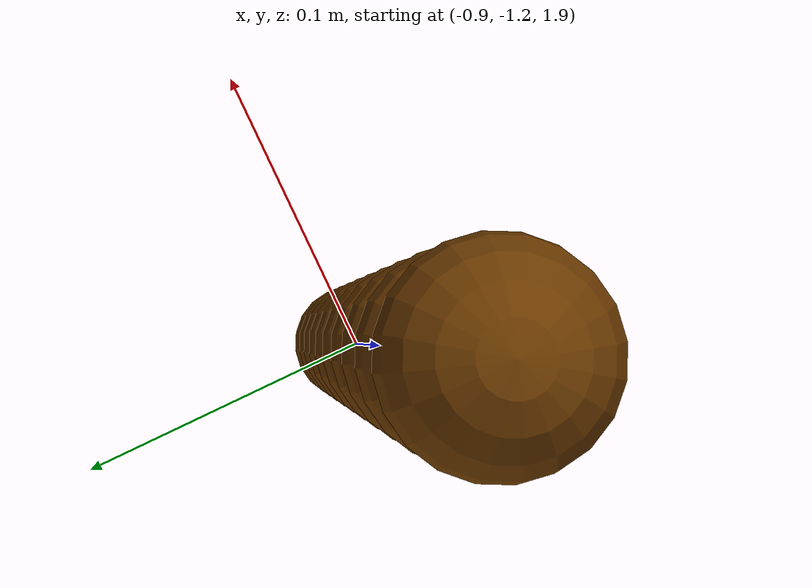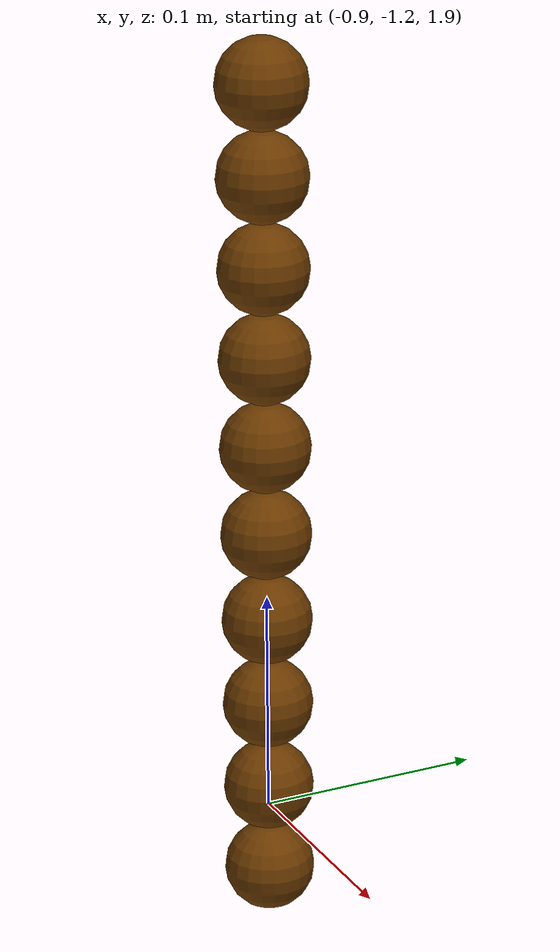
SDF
<sdf version="1.4">
 <world name="default">
  <include><uri>model://sun</uri></include>
  <scene><sky><time>12</time></sky><shadows>0</shadows></scene>
  <physics type="ode">
   <max_step_size>0.002</max_step_size>
   <real_time_factor>10.0</real_time_factor>
   <real_time_update_rate>500.0</real_time_update_rate>
  </physics>
  <plugin name="B1_collision_plugin" filename="libcollision_plugin.so">
   <pubPeriod>2</pubPeriod>
   <pubTopic>B1_Hit</pubTopic>
   <collisionObject1>B1</collisionObject1>
  </plugin>
  <plugin name="R1_collision_plugin" filename="libcollision_plugin.so">
   <pubPeriod>2</pubPeriod>
   <pubTopic>R1_Hit</pubTopic>
   <collisionObject1>R1</collisionObject1>
  </plugin>
  <model name="wind_model">
   <pose>-0.9 -1.2 1.3 0 0 0</pose>
   <static>false</static>
   <enable_wind>true</enable_wind>
   <self_collide>true</self_collide>
   <link name="roof">
    <pose>-0.9 -1.2 1.8 0 0 0</pose>
    <collision name="collision">
     <geometry><box><size>1 1 0.1</size></box></geometry>
     <surface><friction><ode><mu>0.1</mu><mu2>0</mu2></ode></friction></surface>
    </collision>
   </link>
   <joint name="roofJoint" type="fixed"><parent>world</parent><child>roof</child></joint>
   <link name="sphere_1">
    <pose>0 0 0.93 0 0 0</pose>
    <enable_wind>true</enable_wind>
    <collision name="collision"><geometry><sphere><radius>0.02</radius></sphere></geometry></collision>
    <visual name="visual">
     <geometry><sphere><radius>0.02</radius></sphere></geometry>
     <material>
      <ambient>1.0 0 0 1.0</ambient>
      <diffuse>.421 0.225 0.0 1.0</diffuse>
      <specular>1.0 0 0 1.0</specular>
     </material>
    </visual>
   </link>
   <joint name="sphere_1_joint" type="ball"><parent>roof</parent><child>sphere_1</child></joint>
   <link name="sphere_2">
    <pose>0 0 0.89 0 0 0</pose>
    <enable_wind>true</enable_wind>
    <collision name="collision"><geometry><sphere><radius>0.02</radius></sphere></geometry></collision>
    <visual name="visual">
     <geometry><sphere><radius>0.02</radius></sphere></geometry>
     <material>
      <ambient>1.0 0 0 1.0</ambient>
      <diffuse>.421 0.225 0.0 1.0</diffuse>
      <specular>1.0 0 0 1.0</specular>
     </material>
    </visual>
   </link>
   <joint name="sphere_2_joint" type="ball"><parent>sphere_1</parent><child>sphere_2</child></joint>
   <link name="sphere_3">
    <pose>0 0 0.85 0 0 0</pose>
    <enable_wind>true</enable_wind>
    <collision name="collision"><geometry><sphere><radius>0.02</radius></sphere></geometry></collision>
    <visual name="visual">
     <geometry><sphere><radius>0.02</radius></sphere></geometry>
     <material>
      <ambient>1.0 0 0 1.0</ambient>
      <diffuse>.421 0.225 0.0 1.0</diffuse>
      <specular>1.0 0 0 1.0</specular>
     </material>
    </visual>
   </link>
   <joint name="sphere_3_joint" type="ball"><parent>sphere_2</parent><child>sphere_3</child></joint>
   <link name="sphere_4">
    <pose>0 0 0.81 0 0 0</pose>
    <enable_wind>true</enable_wind>
    <collision name="collision"><geometry><sphere><radius>0.02</radius></sphere></geometry></collision>
    <visual name="visual">
     <geometry><sphere><radius>0.02</radius></sphere></geometry>
     <material>
      <ambient>1.0 0 0 1.0</ambient>
      <diffuse>.421 0.225 0.0 1.0</diffuse>
      <specular>1.0 0 0 1.0</specular>
     </material>
    </visual>
   </link>
   <joint name="sphere_4_joint" type="ball"><parent>sphere_3</parent><child>sphere_4</child></joint>
   <link name="sphere_5">
    <pose>0 0 0.77 0 0 0</pose>
    <enable_wind>true</enable_wind>
    <collision name="collision"><geometry><sphere><radius>0.02</radius></sphere></geometry></collision>
    <visual name="visual">
     <geometry><sphere><radius>0.02</radius></sphere></geometry>
     <material>
      <ambient>1.0 0 0 1.0</ambient>
      <diffuse>.421 0.225 0.0 1.0</diffuse>
      <specular>1.0 0 0 1.0</specular>
     </material>
    </visual>
   </link>
   <joint name="sphere_5_joint" type="ball"><parent>sphere_4</parent><child>sphere_5</child></joint>
   <link name="sphere_6">
    <pose>0 0 0.73 0 0 0</pose>
    <enable_wind>true</enable_wind>
    <collision name="collision"><geometry><sphere><radius>0.02</radius></sphere></geometry></collision>
    <visual name="visual">
     <geometry><sphere><radius>0.02</radius></sphere></geometry>
     <material>
      <ambient>1.0 0 0 1.0</ambient>
      <diffuse>.421 0.225 0.0 1.0</diffuse>
      <specular>1.0 0 0 1.0</specular>
     </material>
    </visual>
   </link>
   <joint name="sphere_6_joint" type="ball"><parent>sphere_5</parent><child>sphere_6</child></joint>
   <link name="sphere_7">
    <pose>0 0 0.69 0 0 0</pose>
    <enable_wind>true</enable_wind>
    <collision name="collision"><geometry><sphere><radius>0.02</radius></sphere></geometry></collision>
    <visual name="visual">
     <geometry><sphere><radius>0.02</radius></sphere></geometry>
     <material>
      <ambient>1.0 0 0 1.0</ambient>
      <diffuse>.421 0.225 0.0 1.0</diffuse>
      <specular>1.0 0 0 1.0</specular>
     </material>
    </visual>
   </link>
   <joint name="sphere_7_joint" type="ball"><parent>sphere_6</parent><child>sphere_7</child></joint>
   <link name="sphere_8">
    <pose>0 0 0.65 0 0 0</pose>
    <enable_wind>true</enable_wind>
    <collision name="collision"><geometry><sphere><radius>0.02</radius></sphere></geometry></collision>
    <visual name="visual">
     <geometry><sphere><radius>0.02</radius></sphere></geometry>
     <material>
      <ambient>1.0 0 0 1.0</ambient>
      <diffuse>.421 0.225 0.0 1.0</diffuse>
      <specular>1.0 0 0 1.0</specular>
     </material>
    </visual>
   </link>
   <joint name="sphere_8_joint" type="ball"><parent>sphere_7</parent><child>sphere_8</child></joint>
   <link name="sphere_9">
    <pose>0 0 0.61 0 0 0</pose>
    <enable_wind>true</enable_wind>
    <collision name="collision"><geometry><sphere><radius>0.02</radius></sphere></geometry></collision>
    <visual name="visual">
     <geometry><sphere><radius>0.02</radius></sphere></geometry>
     <material>
      <ambient>1.0 0 0 1.0</ambient>
      <diffuse>.421 0.225 0.0 1.0</diffuse>
      <specular>1.0 0 0 1.0</specular>
     </material>
    </visual>
   </link>
   <joint name="sphere_9_joint" type="ball"><parent>sphere_8</parent><child>sphere_9</child></joint>
   <link name="sphere_10">
    <pose>0 0 0.57 0 0 0</pose>
    <enable_wind>true</enable_wind>
    <collision name="collision"><geometry><sphere><radius>0.02</radius></sphere></geometry></collision>
    <visual name="visual">
     <geometry><sphere><radius>0.02</radius></sphere></geometry>
     <material>
      <ambient>1.0 0 0 1.0</ambient>
      <diffuse>.421 0.225 0.0 1.0</diffuse>
      <specular>1.0 0 0 1.0</specular>
     </material>
    </visual>
   </link>
   <joint name="sphere_10_joint" type="ball"><parent>sphere_9</parent><child>sphere_10</child></joint>
  </model>
  <wind><linear_velocity>0 0 0</linear_velocity></wind>
  <plugin name="wind" filename="libWindPlugin.so">
   <force_approximation_scaling_factor>0.01</force_approximation_scaling_factor>
   <horizontal>
    <magnitude>
     <time_for_rise>10</time_for_rise>
     <sin><amplitude_percent>0.05</amplitude_percent><period>60</period></sin>
     <noise type="gaussian"><mean>0</mean><stddev>0.0002</stddev></noise>
    </magnitude>
    <direction>
     <time_for_rise>30</time_for_rise>
     <sin><amplitude>5</amplitude><period>20</period></sin>
     <noise type="gaussian"><mean>0</mean><stddev>0.03</stddev></noise>
    </direction>
   </horizontal>
   <vertical><noise type="gaussian"><mean>0</mean><stddev>0.03</stddev></noise></vertical>
  </plugin>
 </world>
</sdf>
